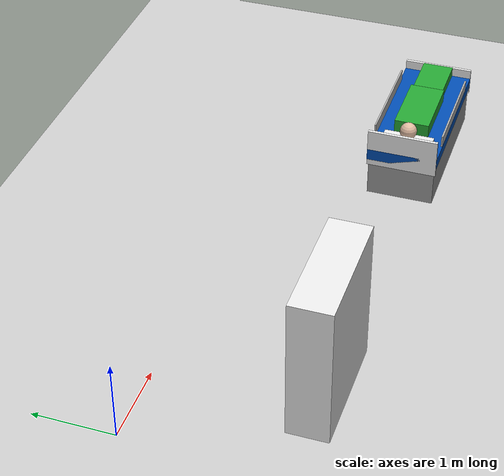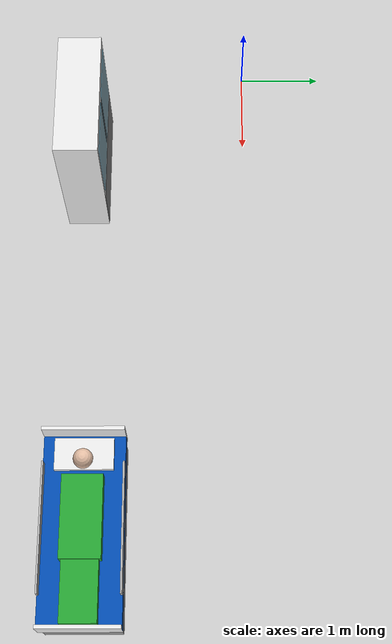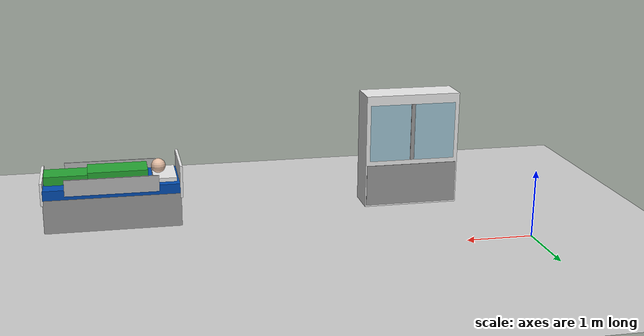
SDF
<sdf version="1.7">
 <world name="default">
  <model name="ground_plane">
   <static>1</static>
   <link name="link">
    <collision name="collision">
     <geometry><plane><normal>0 0 1</normal><size>100 100</size></plane></geometry>
     <surface><friction><ode><mu>100</mu><mu2>50</mu2></ode></friction></surface>
    </collision>
    <visual name="visual">
     <cast_shadows>0</cast_shadows>
     <geometry><plane><normal>0 0 1</normal><size>100 100</size></plane></geometry>
     <material>
      <script><uri>file://media/materials/scripts/gazebo.material</uri><name>Gazebo/Grey</name></script>
     </material>
    </visual>
   </link>
  </model>
  <model name="hospital_bed_with_patient_2">
   <static>1</static>
   <link name="link">
    <collision name="mattress_collision">
     <pose>0 0 0.6 0 -0 0</pose>
     <geometry><box><size>2.1 0.9 0.15</size></box></geometry>
    </collision>
    <collision name="base_collision">
     <pose>0 0 0.25 0 -0 0</pose>
     <geometry><box><size>2 0.85 0.5</size></box></geometry>
    </collision>
    <visual name="base_frame_visual">
     <pose>0 0 0.26 0 -0 0</pose>
     <geometry><box><size>2.05 0.86 0.52</size></box></geometry>
     <material>
      <script><uri>file://media/materials/scripts/gazebo.material</uri><name>Gazebo/Grey</name></script>
     </material>
    </visual>
    <visual name="mattress_visual">
     <pose>0 0 0.6 0 -0 0</pose>
     <geometry><box><size>2.1 0.9 0.15</size></box></geometry>
     <material>
      <ambient>0 0.2 0.5 1</ambient>
      <diffuse>0 0.3 0.7 1</diffuse>
      <specular>0.1 0.1 0.1 1</specular>
     </material>
    </visual>
    <visual name="headboard_visual">
     <pose>-1.03 0 0.7 0 -0 0</pose>
     <geometry><box><size>0.04 0.9 0.5</size></box></geometry>
     <material>
      <script><uri>file://media/materials/scripts/gazebo.material</uri><name>Gazebo/White</name></script>
     </material>
    </visual>
    <visual name="footboard_visual">
     <pose>1.03 0 0.62 0 -0 0</pose>
     <geometry><box><size>0.04 0.9 0.35</size></box></geometry>
     <material>
      <script><uri>file://media/materials/scripts/gazebo.material</uri><name>Gazebo/White</name></script>
     </material>
    </visual>
    <visual name="left_rail">
     <pose>0 0.44 0.7 0 -0 0</pose>
     <geometry><box><size>1.4 0.02 0.25</size></box></geometry>
     <material>
      <script><uri>file://media/materials/scripts/gazebo.material</uri><name>Gazebo/ZincChromate</name></script>
     </material>
    </visual>
    <visual name="right_rail">
     <pose>0 -0.44 0.7 0 -0 0</pose>
     <geometry><box><size>1.4 0.02 0.25</size></box></geometry>
     <material>
      <script><uri>file://media/materials/scripts/gazebo.material</uri><name>Gazebo/ZincChromate</name></script>
     </material>
    </visual>
    <visual name="pillow_visual">
     <pose>-0.8 0 0.7 0 -0 0</pose>
     <geometry><box><size>0.35 0.65 0.07</size></box></geometry>
     <material>
      <script><uri>file://media/materials/scripts/gazebo.material</uri><name>Gazebo/White</name></script>
     </material>
    </visual>
    <visual name="patient_torso">
     <pose>-0.1 0 0.76 0 -0 0</pose>
     <geometry><box><size>0.9 0.45 0.18</size></box></geometry>
     <material>
      <script><uri>file://media/materials/scripts/gazebo.material</uri><name>Gazebo/Green</name></script>
     </material>
    </visual>
    <visual name="patient_head">
     <pose>-0.72 0 0.84 0 -0 0</pose>
     <geometry><sphere><radius>0.11</radius></sphere></geometry>
     <material><ambient>0.9 0.75 0.65 1</ambient><diffuse>0.9 0.75 0.65 1</diffuse></material>
    </visual>
    <visual name="patient_legs">
     <pose>0.6 0 0.74 0 -0 0</pose>
     <geometry><box><size>0.8 0.4 0.14</size></box></geometry>
     <material>
      <script><uri>file://media/materials/scripts/gazebo.material</uri><name>Gazebo/Green</name></script>
     </material>
    </visual>
   </link>
   <pose>6.06348 -1.82723 0 0 -0 0</pose>
  </model>
  <model name="medicine_cabinet_with_doors">
   <static>0</static>
   <link name="main_frame">
    <inertial>
     <mass>50</mass>
     <inertia><ixx>15</ixx><ixy>0</ixy><ixz>0</ixz><iyy>15</iyy><iyz>0</iyz><izz>10</izz></inertia>
    </inertial>
    <collision name="cabinet_collision">
     <pose>0 0 0.9 0 -0 0</pose>
     <geometry><box><size>1.5 0.5 1.8</size></box></geometry>
    </collision>
    <visual name="outer_shell_visual">
     <pose>0 0 0.9 0 -0 0</pose>
     <geometry><box><size>1.5 0.5 1.8</size></box></geometry>
     <material>
      <script><uri>file://media/materials/scripts/gazebo.material</uri><name>Gazebo/White</name></script>
     </material>
    </visual>
    <visual name="lower_drawers_visual">
     <pose>0 0.01 0.35 0 -0 0</pose>
     <geometry><box><size>1.46 0.49 0.65</size></box></geometry>
     <material>
      <script><uri>file://media/materials/scripts/gazebo.material</uri><name>Gazebo/Grey</name></script>
     </material>
    </visual>
    <visual name="frame_divider">
     <pose>0 0.246 1.2 0 -0 0</pose>
     <geometry><box><size>0.06 0.02 0.9</size></box></geometry>
     <material>
      <script><uri>file://media/materials/scripts/gazebo.material</uri><name>Gazebo/Grey</name></script>
     </material>
    </visual>
   </link>
   <joint name="world_joint" type="fixed"><parent>world</parent><child>main_frame</child></joint>
   <link name="left_door">
    <pose>-0.36 0.25 1.2 0 -0 0</pose>
    <inertial>
     <mass>2</mass>
     <inertia><ixx>0.2</ixx><ixy>0</ixy><ixz>0</ixz><iyy>0.2</iyy><iyz>0</iyz><izz>0.1</izz></inertia>
    </inertial>
    <collision name="left_door_collision"><geometry><box><size>0.65 0.02 0.9</size></box></geometry></collision>
    <visual name="left_door_visual">
     <geometry><box><size>0.65 0.02 0.9</size></box></geometry>
     <material>
      <ambient>0 0.5 0.7 0.3</ambient>
      <diffuse>0 0.5 0.7 0.3</diffuse>
      <specular>1 1 1 1</specular>
     </material>
    </visual>
   </link>
   <joint name="left_hinge" type="revolute">
    <parent>main_frame</parent>
    <child>left_door</child>
    <axis>
     <xyz>0 0 1</xyz>
     <limit><lower>-1.5708</lower><upper>0</upper><effort>10</effort><velocity>1</velocity></limit>
     <dynamics>
      <friction>0.5</friction>
      <damping>0.1</damping>
      <spring_reference>0</spring_reference>
      <spring_stiffness>0</spring_stiffness>
     </dynamics>
    </axis>
   </joint>
   <link name="right_door">
    <pose>0.36 0.25 1.2 0 -0 0</pose>
    <inertial>
     <mass>2</mass>
     <inertia><ixx>0.2</ixx><ixy>0</ixy><ixz>0</ixz><iyy>0.2</iyy><iyz>0</iyz><izz>0.1</izz></inertia>
    </inertial>
    <collision name="right_door_collision"><geometry><box><size>0.65 0.02 0.9</size></box></geometry></collision>
    <visual name="right_door_visual">
     <geometry><box><size>0.65 0.02 0.9</size></box></geometry>
     <material>
      <ambient>0 0.5 0.7 0.3</ambient>
      <diffuse>0 0.5 0.7 0.3</diffuse>
      <specular>1 1 1 1</specular>
     </material>
    </visual>
   </link>
   <joint name="right_hinge" type="revolute">
    <parent>main_frame</parent>
    <child>right_door</child>
    <axis>
     <xyz>0 0 1</xyz>
     <limit><lower>0</lower><upper>1.5708</upper><effort>10</effort><velocity>1</velocity></limit>
     <dynamics>
      <friction>0.5</friction>
      <damping>0.1</damping>
      <spring_reference>0</spring_reference>
      <spring_stiffness>0</spring_stiffness>
     </dynamics>
    </axis>
   </joint>
   <pose>1.34788 -1.9406 -0 0 -0 0</pose>
  </model>
 </world>
</sdf>
